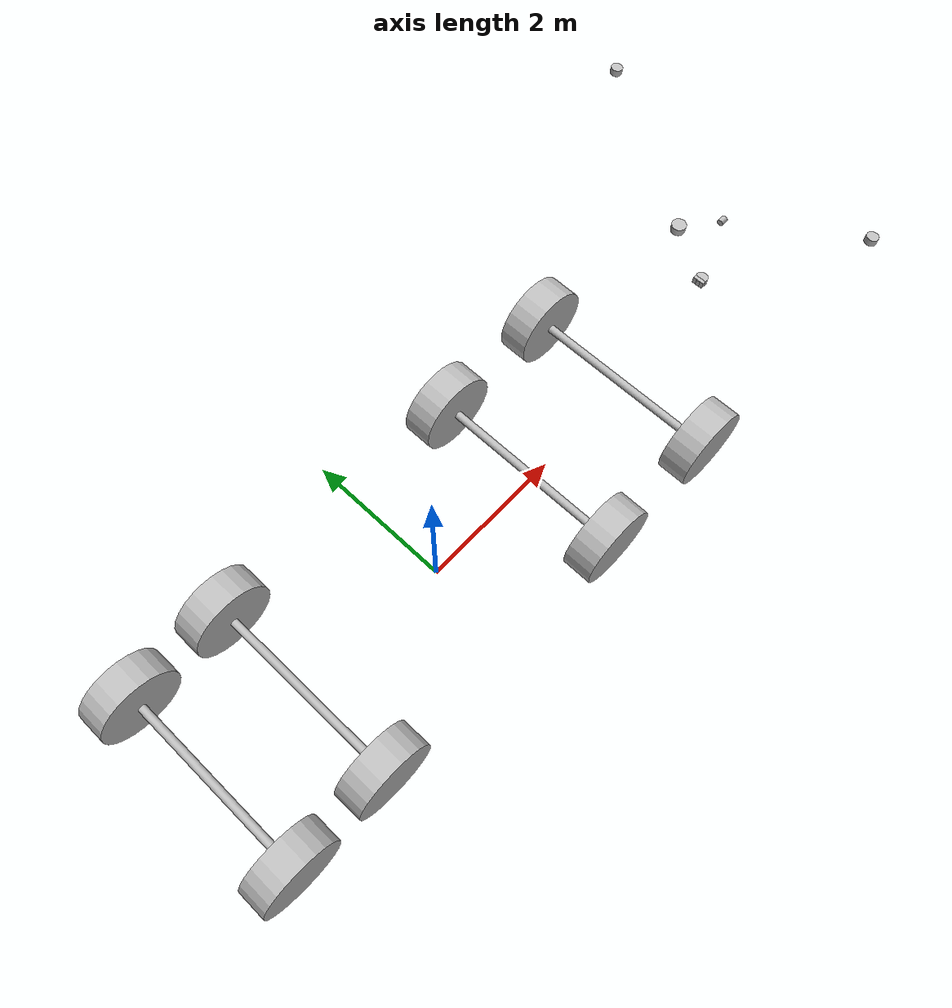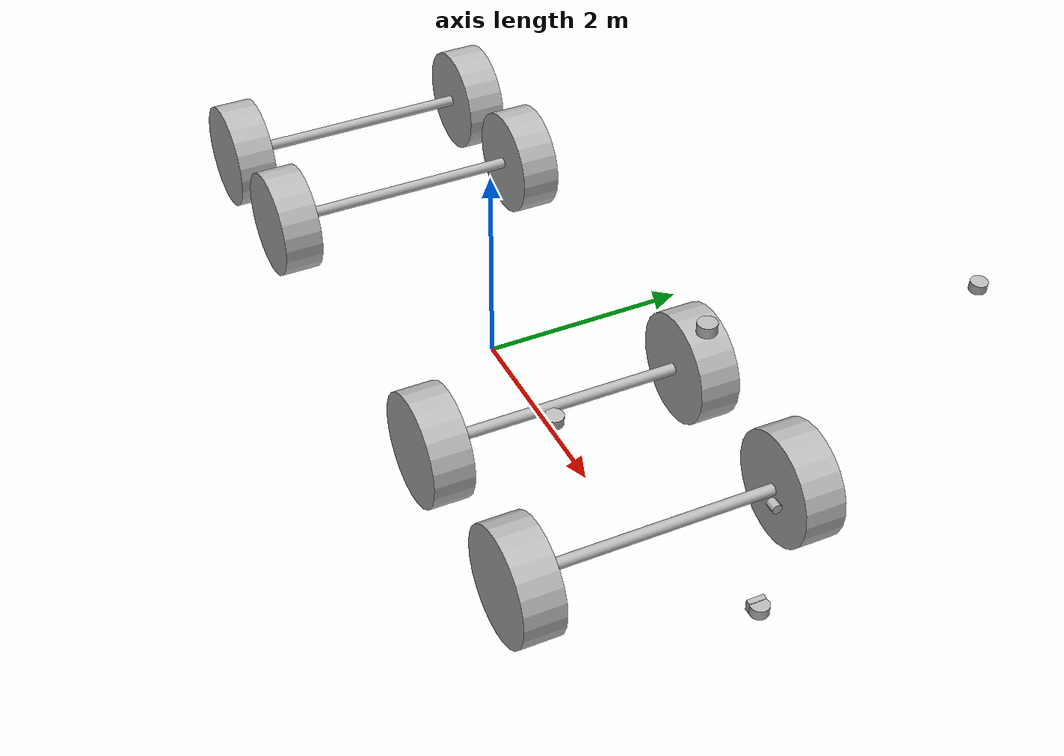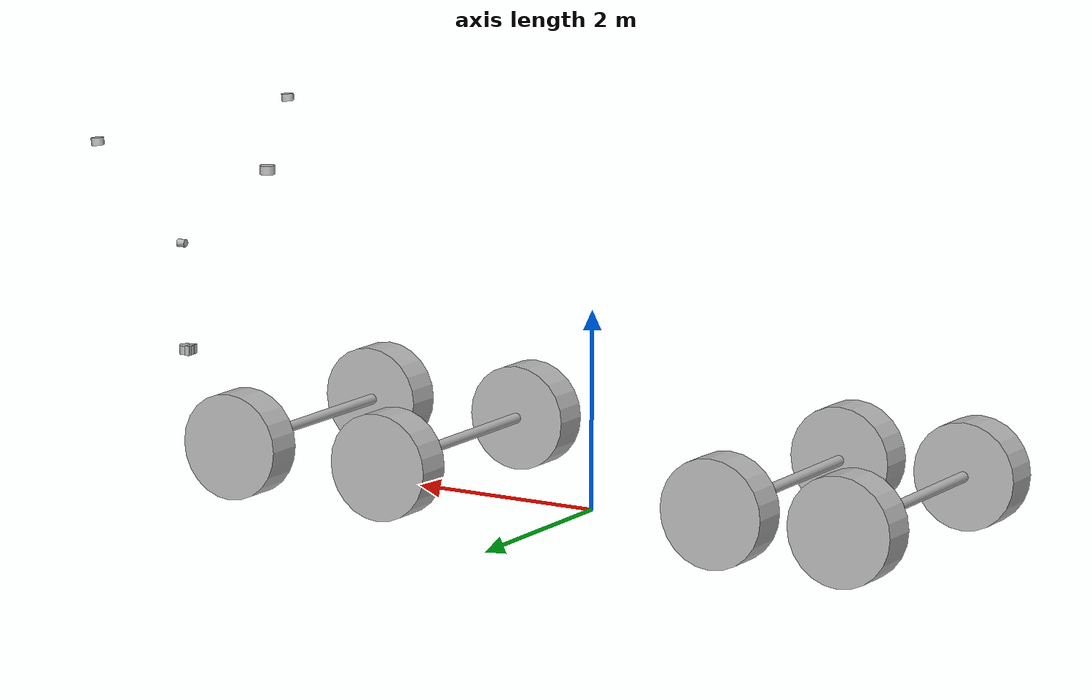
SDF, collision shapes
<sdf version='1.7'>
  <model name='arocs_truck'>
    <link name='base_footprint'>
      <inertial>
        <pose>0.987266 0 1.12626 0 -0 0</pose>
        <mass>1108.1</mass>
        <inertia>
          <ixx>1493.2</ixx>
          <ixy>8.63698e-13</ixy>
          <ixz>-1213.3</ixz>
          <iyy>9087.21</iyy>
          <iyz>3.02923e-28</iyz>
          <izz>9462.03</izz>
        </inertia>
      </inertial>
      <collision name='base_footprint_fixed_joint_lump__left_lidar_link_collision'>
        <pose>4.7025 1.674 3.5145 0.087266 -0 1.5708</pose>
        <geometry>
          <cylinder>
            <length>0.075</length>
            <radius>0.065</radius>
          </cylinder>
        </geometry>
        <surface>
          <contact>
            <ode/>
          </contact>
          <friction>
            <ode/>
          </friction>
        </surface>
      </collision>
      <collision name='base_footprint_fixed_joint_lump__right_lidar_link_collision_1'>
        <pose>4.7025 -1.674 3.5145 0.087266 -0 1.5708</pose>
        <geometry>
          <cylinder>
            <length>0.075</length>
            <radius>0.065</radius>
          </cylinder>
        </geometry>
        <surface>
          <contact>
            <ode/>
          </contact>
          <friction>
            <ode/>
          </friction>
        </surface>
      </collision>
      <collision name='base_footprint_fixed_joint_lump__camera_link_collision_2'>
        <pose>4.8925 0 2.20463 0 1.5708 0</pose>
        <geometry>
          <cylinder>
            <length>0.09</length>
            <radius>0.04</radius>
          </cylinder>
        </geometry>
      </collision>
      <collision name='base_footprint_fixed_joint_lump__gps_link_collision_3'>
        <pose>3.8205 0 3.062 0 -0 0</pose>
        <geometry>
          <cylinder>
            <length>0.09</length>
            <radius>0.08</radius>
          </cylinder>
        </geometry>
        <surface>
          <contact>
            <ode/>
          </contact>
          <friction>
            <ode/>
          </friction>
        </surface>
      </collision>
      <collision name='base_footprint_fixed_joint_lump__first_shaft_horizontal_shaft_link_collision_4'>
        <pose>3.302 0 0.536 -1.5708 1.5708 0</pose>
        <geometry>
          <cylinder>
            <length>2.548</length>
            <radius>0.0536</radius>
          </cylinder>
        </geometry>
      </collision>
      <collision name='base_footprint_fixed_joint_lump__fourth_shaft_horizontal_shaft_link_collision_5'>
        <pose>-3.502 0 0.536 -1.5708 1.5708 0</pose>
        <geometry>
          <cylinder>
            <length>2.548</length>
            <radius>0.0536</radius>
          </cylinder>
        </geometry>
      </collision>
      <collision name='base_footprint_fixed_joint_lump__radar_link_collision_6'>
        <pose>4.8025 0 1.09625 0 -0 0</pose>
        <geometry>
          <box>
            <size>0.05 0.15 0.1</size>
          </box>
        </geometry>
      </collision>
      <collision name='base_footprint_fixed_joint_lump__second_shaft_horizontal_shaft_link_collision_7'>
        <pose>1.552 0 0.536 -1.5708 1.5708 0</pose>
        <geometry>
          <cylinder>
            <length>2.548</length>
            <radius>0.0536</radius>
          </cylinder>
        </geometry>
      </collision>
      <collision name='base_footprint_fixed_joint_lump__second_wheel_left_link_collision_8'>
        <pose>1.552 1.299 0.536 1.5708 0 3.1408</pose>
        <geometry>
          <cylinder>
            <length>0.385</length>
            <radius>0.536</radius>
          </cylinder>
        </geometry>
      </collision>
      <collision name='base_footprint_fixed_joint_lump__second_wheel_right_link_collision_9'>
        <pose>1.552 -1.299 0.536 1.5708 0 3.1408</pose>
        <geometry>
          <cylinder>
            <length>0.385</length>
            <radius>0.536</radius>
          </cylinder>
        </geometry>
      </collision>
      <collision name='base_footprint_fixed_joint_lump__cloud_collision_10'>
        <pose>4.8525 0 1.09625 0 -0 0</pose>
        <geometry>
          <cylinder>
            <length>0.09</length>
            <radius>0.08</radius>
          </cylinder>
        </geometry>
        <surface>
          <contact>
            <ode/>
          </contact>
          <friction>
            <ode/>
          </friction>
        </surface>
      </collision>
      <collision name='base_footprint_fixed_joint_lump__third_shaft_horizontal_shaft_link_collision_11'>
        <pose>-2.152 0 0.536 -1.5708 1.5708 0</pose>
        <geometry>
          <cylinder>
            <length>2.548</length>
            <radius>0.0536</radius>
          </cylinder>
        </geometry>
      </collision>
      <collision name='base_footprint_fixed_joint_lump__third_wheel_left_link_collision_12'>
        <pose>-2.152 1.299 0.536 1.5708 0 3.1408</pose>
        <geometry>
          <cylinder>
            <length>0.385</length>
            <radius>0.536</radius>
          </cylinder>
        </geometry>
      </collision>
      <collision name='base_footprint_fixed_joint_lump__third_wheel_right_link_collision_13'>
        <pose>-2.152 -1.299 0.536 1.5708 0 3.1408</pose>
        <geometry>
          <cylinder>
            <length>0.385</length>
            <radius>0.536</radius>
          </cylinder>
        </geometry>
      </collision>
      <visual name='base_footprint_fixed_joint_lump__base_link_visual'>
        <pose>0 0 0.877 0 -0 0</pose>
        <geometry>
          <mesh>
            <scale>1 1 1</scale>
            <uri>model://arocs_truck/meshes/cabine_chassi.dae</uri>
          </mesh>
        </geometry>
      </visual>
      <visual name='base_footprint_fixed_joint_lump__cabin_link_visual_1'>
        <pose>3.8205 0 2.095 0 -0 0</pose>
        <geometry>
          <box>
            <size>1.964 2.14 1.833</size>
          </box>
        </geometry>
      </visual>
      <visual name='base_footprint_fixed_joint_lump__bar_link_visual_2'>
        <pose>4.7025 0 3.672 0 -0 1.5708</pose>
        <geometry>
          <box>
            <size>3.478 0.04 0.035</size>
          </box>
        </geometry>
      </visual>
      <visual name='base_footprint_fixed_joint_lump__left_lidar_link_visual_3'>
        <pose>4.7025 1.674 3.5145 0.087266 -0 1.5708</pose>
        <geometry>
          <cylinder>
            <length>0.075</length>
            <radius>0.065</radius>
          </cylinder>
        </geometry>
      </visual>
      <visual name='base_footprint_fixed_joint_lump__right_lidar_link_visual_4'>
        <pose>4.7025 -1.674 3.5145 0.087266 -0 1.5708</pose>
        <geometry>
          <cylinder>
            <length>0.075</length>
            <radius>0.065</radius>
          </cylinder>
        </geometry>
      </visual>
      <visual name='base_footprint_fixed_joint_lump__camera_link_visual_5'>
        <pose>4.8925 0 2.20463 0 1.5708 0</pose>
        <geometry>
          <cylinder>
            <length>0.09</length>
            <radius>0.04</radius>
          </cylinder>
        </geometry>
      </visual>
      <visual name='base_footprint_fixed_joint_lump__gps_link_visual_6'>
        <pose>3.8205 0 3.062 0 -0 0</pose>
        <geometry>
          <cylinder>
            <length>0.09</length>
            <radius>0.08</radius>
          </cylinder>
        </geometry>
      </visual>
      <visual name='base_footprint_fixed_joint_lump__imu_link_visual_7'>
        <pose>3.7205 0 2.595 0 -0 0</pose>
        <geometry>
          <box>
            <size>0.25 0.25 0.25</size>
          </box>
        </geometry>
      </visual>
      <visual name='base_footprint_fixed_joint_lump__first_shaft_horizontal_shaft_link_visual_8'>
        <pose>3.302 0 0.536 -1.5708 1.5708 0</pose>
        <geometry>
          <cylinder>
            <length>2.573</length>
            <radius>0.0536</radius>
          </cylinder>
        </geometry>
      </visual>
      <visual name='base_footprint_fixed_joint_lump__fourth_shaft_horizontal_shaft_link_visual_9'>
        <pose>-3.502 0 0.536 -1.5708 1.5708 0</pose>
        <geometry>
          <cylinder>
            <length>2.573</length>
            <radius>0.0536</radius>
          </cylinder>
        </geometry>
      </visual>
      <visual name='base_footprint_fixed_joint_lump__radar_link_visual_10'>
        <pose>4.8025 0 1.09625 0 -0 0</pose>
        <geometry>
          <box>
            <size>0.05 0.15 0.1</size>
          </box>
        </geometry>
      </visual>
      <visual name='base_footprint_fixed_joint_lump__second_shaft_horizontal_shaft_link_visual_11'>
        <pose>1.552 0 0.536 -1.5708 1.5708 0</pose>
        <geometry>
          <cylinder>
            <length>2.573</length>
            <radius>0.0536</radius>
          </cylinder>
        </geometry>
      </visual>
      <visual name='base_footprint_fixed_joint_lump__second_wheel_left_link_visual_12'>
        <pose>1.552 1.299 0.536 1.5708 0 3.1408</pose>
        <geometry>
          <mesh>
            <scale>0.33 0.33 0.33</scale>
            <uri>model://arocs_truck/meshes/roda_frontal_esquerda.dae</uri>
          </mesh>
        </geometry>
      </visual>
      <visual name='base_footprint_fixed_joint_lump__second_wheel_right_link_visual_13'>
        <pose>1.552 -1.299 0.536 1.5708 0 3.1408</pose>
        <geometry>
          <mesh>
            <scale>0.33 0.33 0.33</scale>
            <uri>model://arocs_truck/meshes/roda_frontal_direita.dae</uri>
          </mesh>
        </geometry>
      </visual>
      <visual name='base_footprint_fixed_joint_lump__cloud_visual_14'>
        <pose>4.8525 0 1.09625 0 -0 0</pose>
        <geometry>
          <cylinder>
            <length>0.09</length>
            <radius>0.08</radius>
          </cylinder>
        </geometry>
      </visual>
      <visual name='base_footprint_fixed_joint_lump__third_shaft_horizontal_shaft_link_visual_15'>
        <pose>-2.152 0 0.536 -1.5708 1.5708 0</pose>
        <geometry>
          <cylinder>
            <length>2.573</length>
            <radius>0.0536</radius>
          </cylinder>
        </geometry>
      </visual>
      <visual name='base_footprint_fixed_joint_lump__third_wheel_left_link_visual_16'>
        <pose>-2.152 1.299 0.536 1.5708 0 3.1408</pose>
        <geometry>
          <mesh>
            <scale>0.33 0.33 0.33</scale>
            <uri>model://arocs_truck/meshes/roda_traseira_esquerda.dae</uri>
          </mesh>
        </geometry>
      </visual>
      <visual name='base_footprint_fixed_joint_lump__third_wheel_right_link_visual_17'>
        <pose>-2.152 -1.299 0.536 1.5708 0 3.1408</pose>
        <geometry>
          <mesh>
            <scale>0.33 0.33 0.33</scale>
            <uri>model://arocs_truck/meshes/roda_traseira_direita.dae</uri>
          </mesh>
        </geometry>
      </visual>
      <sensor name='left_lidar' type='ray'>
        <always_on>1</always_on>
        <visualize>1</visualize>
        <update_rate>10</update_rate>
        <ray>
          <scan>
            <horizontal>
              <samples>360</samples>
              <resolution>1</resolution>
              <min_angle>0</min_angle>
              <max_angle>6.28</max_angle>
            </horizontal>
          </scan>
          <range>
            <min>0.12</min>
            <max>100</max>
            <resolution>0.015</resolution>
          </range>
          <noise>
            <type>gaussian</type>
            <mean>0</mean>
            <stddev>0.01</stddev>
          </noise>
        </ray>
        <plugin name='left_lidar_scan' filename='libgazebo_ros_ray_sensor.so'>
          <ros>
            <remapping>~/out:=left_scan</remapping>
          </ros>
          <output_type>sensor_msgs/LaserScan</output_type>
          <frame_name>left_lidar_link</frame_name>
        </plugin>
        <pose>4.7025 1.674 3.5145 0.087266 0 1.5708</pose>
      </sensor>
      <sensor name='right_lidar' type='ray'>
        <always_on>1</always_on>
        <visualize>1</visualize>
        <update_rate>10</update_rate>
        <ray>
          <scan>
            <horizontal>
              <samples>360</samples>
              <resolution>1</resolution>
              <min_angle>0</min_angle>
              <max_angle>6.28</max_angle>
            </horizontal>
          </scan>
          <range>
            <min>0.12</min>
            <max>100</max>
            <resolution>0.015</resolution>
          </range>
          <noise>
            <type>gaussian</type>
            <mean>0</mean>
            <stddev>0.01</stddev>
          </noise>
        </ray>
        <plugin name='right_lidar_scan' filename='libgazebo_ros_ray_sensor.so'>
          <ros>
            <remapping>~/out:=right_scan</remapping>
          </ros>
          <output_type>sensor_msgs/LaserScan</output_type>
          <frame_name>right_lidar_link</frame_name>
        </plugin>
        <pose>4.7025 -1.674 3.5145 0.087266 0 1.5708</pose>
      </sensor>
      <sensor name='camera' type='camera'>
        <visualize>1</visualize>
        <update_rate>30</update_rate>
        <camera name='head'>
          <horizontal_fov>1.0472</horizontal_fov>
          <image>
            <width>800</width>
            <height>800</height>
            <format>R8G8B8</format>
          </image>
          <clip>
            <near>0.05</near>
            <far>300</far>
          </clip>
          <noise>
            <type>gaussian</type>
            <mean>0</mean>
            <stddev>0.007</stddev>
          </noise>
        </camera>
        <plugin name='camera_controller' filename='libgazebo_ros_camera.so'>
          <alwaysOn>1</alwaysOn>
          <updateRate>0.0</updateRate>
          <cameraName>/flir/camera</cameraName>
          <imageTopicName>image_raw</imageTopicName>
          <cameraInfoTopicName>camera_info</cameraInfoTopicName>
          <frame_name>camera</frame_name>
          <hackBaseline>0.07</hackBaseline>
          <distortionK1>0.0</distortionK1>
          <distortionK2>0.0</distortionK2>
          <distortionK3>0.0</distortionK3>
          <distortionT1>0.0</distortionT1>
          <distortionT2>0.0</distortionT2>
        </plugin>
        <pose>4.8925 0 2.20463 0 0 -0</pose>
      </sensor>
      <sensor name='arocs_gps' type='gps'>
        <always_on>1</always_on>
        <update_rate>1</update_rate>
        <plugin name='gps_plugin' filename='libgazebo_ros_gps_sensor.so'>
          <ros>
            <namespace>/gps</namespace>
            <remapping>~/out:=fix</remapping>
            <remapping>~/out:=data</remapping>
            <remapping>~/vel:=velocity</remapping>
          </ros>
        </plugin>
        <pose>3.8205 0 3.062 0 -0 0</pose>
      </sensor>
      <sensor name='imu_sensor' type='imu'>
        <plugin name='imu_plugin' filename='libgazebo_ros_imu_sensor.so'>
          <ros>
            <remapping>~/out:=imu</remapping>
          </ros>
          <initial_orientation_as_reference>0</initial_orientation_as_reference>
        </plugin>
        <always_on>1</always_on>
        <update_rate>200</update_rate>
        <visualize>1</visualize>
        <imu>
          <angular_velocity>
            <x>
              <noise type='gaussian'>
                <mean>0</mean>
                <stddev>0.0002</stddev>
                <bias_mean>7.5e-06</bias_mean>
                <bias_stddev>8e-07</bias_stddev>
              </noise>
            </x>
            <y>
              <noise type='gaussian'>
                <mean>0</mean>
                <stddev>0.0002</stddev>
                <bias_mean>7.5e-06</bias_mean>
                <bias_stddev>8e-07</bias_stddev>
              </noise>
            </y>
            <z>
              <noise type='gaussian'>
                <mean>0</mean>
                <stddev>0.0002</stddev>
                <bias_mean>7.5e-06</bias_mean>
                <bias_stddev>8e-07</bias_stddev>
              </noise>
            </z>
          </angular_velocity>
          <linear_acceleration>
            <x>
              <noise type='gaussian'>
                <mean>0</mean>
                <stddev>0.017</stddev>
                <bias_mean>0.1</bias_mean>
                <bias_stddev>0.001</bias_stddev>
              </noise>
            </x>
            <y>
              <noise type='gaussian'>
                <mean>0</mean>
                <stddev>0.017</stddev>
                <bias_mean>0.1</bias_mean>
                <bias_stddev>0.001</bias_stddev>
              </noise>
            </y>
            <z>
              <noise type='gaussian'>
                <mean>0</mean>
                <stddev>0.017</stddev>
                <bias_mean>0.1</bias_mean>
                <bias_stddev>0.001</bias_stddev>
              </noise>
            </z>
          </linear_acceleration>
        </imu>
        <pose>3.7205 0 2.595 0 -0 0</pose>
      </sensor>
      <sensor name='sick_lidar' type='ray'>
        <always_on>1</always_on>
        <visualize>1</visualize>
        <update_rate>10</update_rate>
        <ray>
          <scan>
            <horizontal>
              <samples>360</samples>
              <resolution>1</resolution>
              <min_angle>-1.5708</min_angle>
              <max_angle>1.5708</max_angle>
            </horizontal>
          </scan>
          <range>
            <min>0.12</min>
            <max>40</max>
            <resolution>0.01</resolution>
          </range>
          <noise>
            <type>gaussian</type>
            <mean>0</mean>
            <stddev>0.01</stddev>
          </noise>
        </ray>
        <plugin name='scan_link_lidar' filename='libgazebo_ros_ray_sensor.so'>
          <ros>
            <remapping>~/out:=/sick_scan_2D</remapping>
          </ros>
          <output_type>sensor_msgs/LaserScan</output_type>
          <frame_name>cloud</frame_name>
        </plugin>
        <pose>4.8525 0 1.09625 0 -0 0</pose>
      </sensor>
    </link>
    <joint name='front_left_steer_joint' type='revolute'>
      <pose relative_to='base_footprint'>3.302 1.299 0.535 0 -0 1.5708</pose>
      <parent>base_footprint</parent>
      <child>front_left_steering_link</child>
      <axis>
        <xyz>0 0 1</xyz>
        <limit>
          <lower>-0.524</lower>
          <upper>0.524</upper>
          <effort>1e+07</effort>
          <velocity>1e+06</velocity>
        </limit>
        <dynamics>
          <spring_reference>0</spring_reference>
          <spring_stiffness>0</spring_stiffness>
        </dynamics>
      </axis>
    </joint>
    <link name='front_left_steering_link'>
      <pose relative_to='front_left_steer_joint'>0 0 0 0 -0 0</pose>
      <inertial>
        <pose>0 0 0 0 -0 0</pose>
        <mass>2</mass>
        <inertia>
          <ixx>0.0116667</ixx>
          <ixy>0</ixy>
          <ixz>0</ixz>
          <iyy>0.0116667</iyy>
          <iyz>0</iyz>
          <izz>0.01</izz>
        </inertia>
      </inertial>
      <collision name='front_left_steering_link_collision'>
        <pose>0 0 0 0 -0 0</pose>
        <geometry>
          <cylinder>
            <length>0.2</length>
            <radius>0.1</radius>
          </cylinder>
        </geometry>
      </collision>
      <visual name='front_left_steering_link_visual'>
        <pose>0 0 0 0 -0 0</pose>
        <geometry>
          <cylinder>
            <length>0.2</length>
            <radius>0.1</radius>
          </cylinder>
        </geometry>
      </visual>
    </link>
    <joint name='first_wheel_left_joint' type='revolute'>
      <pose relative_to='front_left_steering_link'>0 0 0 0 -0 1.57</pose>
      <parent>front_left_steering_link</parent>
      <child>first_wheel_left_link</child>
      <axis>
        <xyz>0 -1 0</xyz>
        <limit>
          <lower>-1e+16</lower>
          <upper>1e+16</upper>
        </limit>
        <dynamics>
          <spring_reference>0</spring_reference>
          <spring_stiffness>0</spring_stiffness>
        </dynamics>
      </axis>
    </joint>
    <link name='first_wheel_left_link'>
      <pose relative_to='first_wheel_left_joint'>0 0 0 0 -0 0</pose>
      <inertial>
        <pose>0 0 0 0 -0 0</pose>
        <mass>74</mass>
        <inertia>
          <ixx>10.63</ixx>
          <ixy>0</ixy>
          <ixz>0</ixz>
          <iyy>10.63</iyy>
          <iyz>0</iyz>
          <izz>21.2599</izz>
        </inertia>
      </inertial>
      <collision name='first_wheel_left_link_collision'>
        <pose>0 0 0 1.5708 -0 0</pose>
        <geometry>
          <cylinder>
            <length>0.385</length>
            <radius>0.536</radius>
          </cylinder>
        </geometry>
      </collision>
      <visual name='first_wheel_left_link_visual'>
        <pose>0 0 0 1.5708 -0 0</pose>
        <geometry>
          <mesh>
            <scale>0.33 0.33 0.33</scale>
            <uri>model://arocs_truck/meshes/roda_frontal_esquerda.dae</uri>
          </mesh>
        </geometry>
      </visual>
    </link>
    <joint name='front_right_steer_joint' type='revolute'>
      <pose relative_to='base_footprint'>3.302 -1.299 0.535 0 -0 1.5708</pose>
      <parent>base_footprint</parent>
      <child>front_right_steering_link</child>
      <axis>
        <xyz>0 0 1</xyz>
        <limit>
          <lower>-0.524</lower>
          <upper>0.524</upper>
          <effort>1e+07</effort>
          <velocity>1e+06</velocity>
        </limit>
        <dynamics>
          <spring_reference>0</spring_reference>
          <spring_stiffness>0</spring_stiffness>
        </dynamics>
      </axis>
    </joint>
    <link name='front_right_steering_link'>
      <pose relative_to='front_right_steer_joint'>0 0 0 0 -0 0</pose>
      <inertial>
        <pose>0 0 0 0 -0 0</pose>
        <mass>2</mass>
        <inertia>
          <ixx>0.0116667</ixx>
          <ixy>0</ixy>
          <ixz>0</ixz>
          <iyy>0.0116667</iyy>
          <iyz>0</iyz>
          <izz>0.01</izz>
        </inertia>
      </inertial>
      <collision name='front_right_steering_link_collision'>
        <pose>0 0 0 0 -0 0</pose>
        <geometry>
          <cylinder>
            <length>0.2</length>
            <radius>0.1</radius>
          </cylinder>
        </geometry>
      </collision>
      <visual name='front_right_steering_link_visual'>
        <pose>0 0 0 0 -0 0</pose>
        <geometry>
          <cylinder>
            <length>0.2</length>
            <radius>0.1</radius>
          </cylinder>
        </geometry>
      </visual>
    </link>
    <joint name='first_wheel_right_joint' type='revolute'>
      <pose relative_to='front_right_steering_link'>0 -0.025 0 0 -0 1.57</pose>
      <parent>front_right_steering_link</parent>
      <child>first_wheel_right_link</child>
      <axis>
        <xyz>0 -1 0</xyz>
        <limit>
          <lower>-1e+16</lower>
          <upper>1e+16</upper>
        </limit>
        <dynamics>
          <spring_reference>0</spring_reference>
          <spring_stiffness>0</spring_stiffness>
        </dynamics>
      </axis>
    </joint>
    <link name='first_wheel_right_link'>
      <pose relative_to='first_wheel_right_joint'>0 0 0 0 -0 0</pose>
      <inertial>
        <pose>0 0 0 0 -0 0</pose>
        <mass>74</mass>
        <inertia>
          <ixx>10.63</ixx>
          <ixy>0</ixy>
          <ixz>0</ixz>
          <iyy>10.63</iyy>
          <iyz>0</iyz>
          <izz>21.2599</izz>
        </inertia>
      </inertial>
      <collision name='first_wheel_right_link_collision'>
        <pose>0 0 0 1.5708 -0 0</pose>
        <geometry>
          <cylinder>
            <length>0.385</length>
            <radius>0.536</radius>
          </cylinder>
        </geometry>
      </collision>
      <visual name='first_wheel_right_link_visual'>
        <pose>0 0 0 1.5708 -0 0</pose>
        <geometry>
          <mesh>
            <scale>0.33 0.33 0.33</scale>
            <uri>model://arocs_truck/meshes/roda_frontal_direita.dae</uri>
          </mesh>
        </geometry>
      </visual>
    </link>
    <joint name='fourth_wheel_left_joint' type='revolute'>
      <pose relative_to='base_footprint'>-3.502 1.299 0.536 0 -0 3.1408</pose>
      <parent>base_footprint</parent>
      <child>fourth_wheel_left_link</child>
      <axis>
        <xyz>0 -1 0</xyz>
        <limit>
          <lower>-1e+16</lower>
          <upper>1e+16</upper>
        </limit>
        <dynamics>
          <spring_reference>0</spring_reference>
          <spring_stiffness>0</spring_stiffness>
        </dynamics>
      </axis>
    </joint>
    <link name='fourth_wheel_left_link'>
      <pose relative_to='fourth_wheel_left_joint'>0 0 0 0 -0 0</pose>
      <inertial>
        <pose>0 0 0 0 -0 0</pose>
        <mass>74</mass>
        <inertia>
          <ixx>10.63</ixx>
          <ixy>0</ixy>
          <ixz>0</ixz>
          <iyy>10.63</iyy>
          <iyz>0</iyz>
          <izz>21.2599</izz>
        </inertia>
      </inertial>
      <collision name='fourth_wheel_left_link_collision'>
        <pose>0 0 0 1.5708 -0 0</pose>
        <geometry>
          <cylinder>
            <length>0.385</length>
            <radius>0.536</radius>
          </cylinder>
        </geometry>
      </collision>
      <visual name='fourth_wheel_left_link_visual'>
        <pose>0 0 0 1.5708 -0 0</pose>
        <geometry>
          <mesh>
            <scale>0.33 0.33 0.33</scale>
            <uri>model://arocs_truck/meshes/roda_traseira_esquerda.dae</uri>
          </mesh>
        </geometry>
      </visual>
    </link>
    <joint name='fourth_wheel_right_joint' type='revolute'>
      <pose relative_to='base_footprint'>-3.502 -1.299 0.536 0 -0 3.1408</pose>
      <parent>base_footprint</parent>
      <child>fourth_wheel_right_link</child>
      <axis>
        <xyz>0 -1 0</xyz>
        <limit>
          <lower>-1e+16</lower>
          <upper>1e+16</upper>
        </limit>
        <dynamics>
          <spring_reference>0</spring_reference>
          <spring_stiffness>0</spring_stiffness>
        </dynamics>
      </axis>
    </joint>
    <link name='fourth_wheel_right_link'>
      <pose relative_to='fourth_wheel_right_joint'>0 0 0 0 -0 0</pose>
      <inertial>
        <pose>0 0 0 0 -0 0</pose>
        <mass>74</mass>
        <inertia>
          <ixx>10.63</ixx>
          <ixy>0</ixy>
          <ixz>0</ixz>
          <iyy>10.63</iyy>
          <iyz>0</iyz>
          <izz>21.2599</izz>
        </inertia>
      </inertial>
      <collision name='fourth_wheel_right_link_collision'>
        <pose>0 0 0 1.5708 -0 0</pose>
        <geometry>
          <cylinder>
            <length>0.385</length>
            <radius>0.536</radius>
          </cylinder>
        </geometry>
      </collision>
      <visual name='fourth_wheel_right_link_visual'>
        <pose>0 0 0 1.5708 -0 0</pose>
        <geometry>
          <mesh>
            <scale>0.33 0.33 0.33</scale>
            <uri>model://arocs_truck/meshes/roda_traseira_direita.dae</uri>
          </mesh>
        </geometry>
      </visual>
    </link>
    <plugin name='ackermann_drive' filename='libgazebo_ros_ackermann_drive.so'>
      <ros>
        <parameter name='cmd_vel_topic' value='cmd_vel'/>
        <parameter name='odom_topic' value='odom'/>
        <parameter name='distance_topic' value='distance'/>
      </ros>
      <update_rate>30.0</update_rate>
      <front_left_joint>first_wheel_left_joint</front_left_joint>
      <front_right_joint>first_wheel_right_joint</front_right_joint>
      <rear_left_joint>fourth_wheel_left_joint</rear_left_joint>
      <rear_right_joint>fourth_wheel_right_joint</rear_right_joint>
      <left_steering_joint>front_left_steer_joint</left_steering_joint>
      <right_steering_joint>front_right_steer_joint</right_steering_joint>
      <max_steer>0.6458</max_steer>
      <max_steering_angle>7.85</max_steering_angle>
      <max_speed>20</max_speed>
      <left_steering_pid_gain>1700 0 1</left_steering_pid_gain>
      <left_steering_i_range>0 0</left_steering_i_range>
      <right_steering_pid_gain>1700 0 1</right_steering_pid_gain>
      <right_steering_i_range>0 0</right_steering_i_range>
      <linear_velocity_pid_gain>1700 0 1</linear_velocity_pid_gain>
      <linear_velocity_i_range>0 0</linear_velocity_i_range>
      <publish_odom>1</publish_odom>
      <publish_odom_tf>1</publish_odom_tf>
      <publish_wheel_tf>1</publish_wheel_tf>
      <publish_distance>1</publish_distance>
      <odometry_frame>odom</odometry_frame>
      <robot_base_frame>base_footprint</robot_base_frame>
    </plugin>
    <static>0</static>
    <plugin name='truck_joint_state' filename='libgazebo_ros_joint_state_publisher.so'>
      <ros>
        <remapping>~/out:=joint_states</remapping>
      </ros>
      <update_rate>30</update_rate>
      <joint_name>front_right_steer_joint</joint_name>
      <joint_name>front_left_steer_joint</joint_name>
      <joint_name>first_wheel_left_joint</joint_name>
      <joint_name>first_wheel_right_joint</joint_name>
      <joint_name>fourth_wheel_left_joint</joint_name>
      <joint_name>fourth_wheel_right_joint</joint_name>
    </plugin>
  </model>
</sdf>
